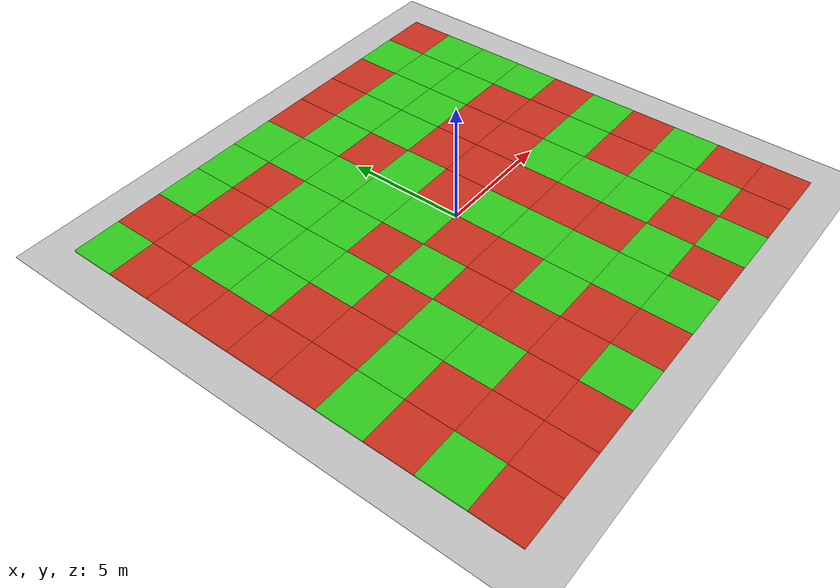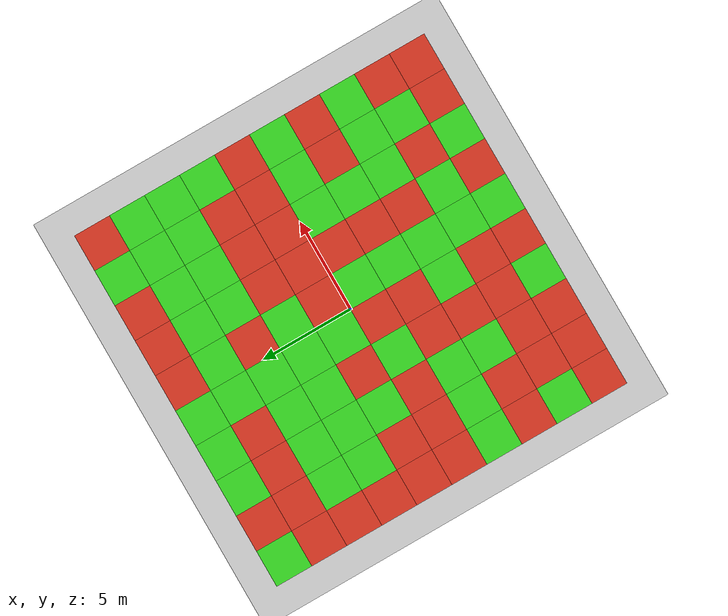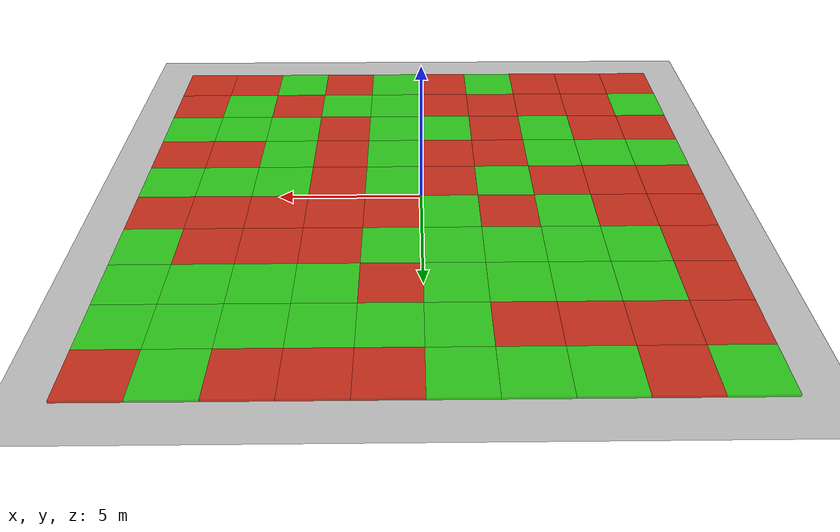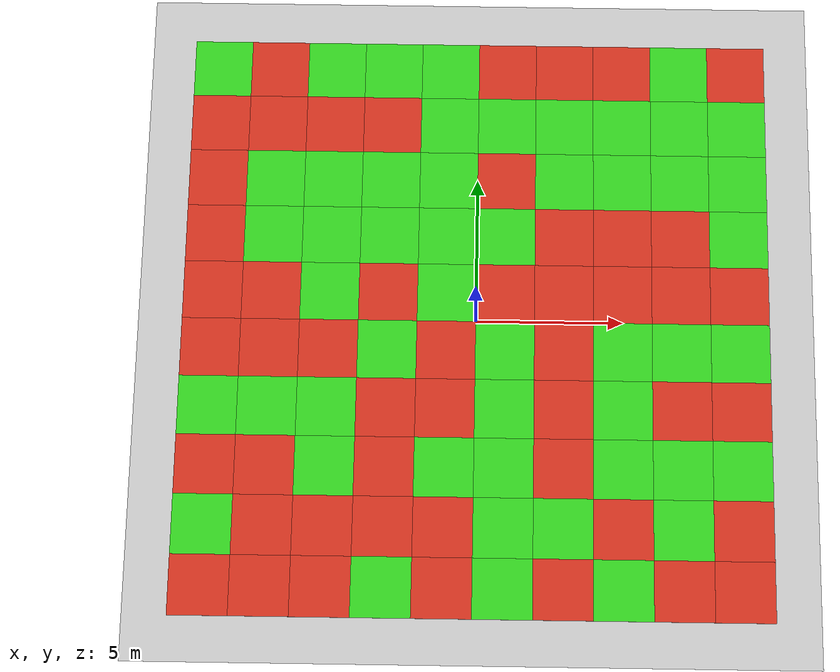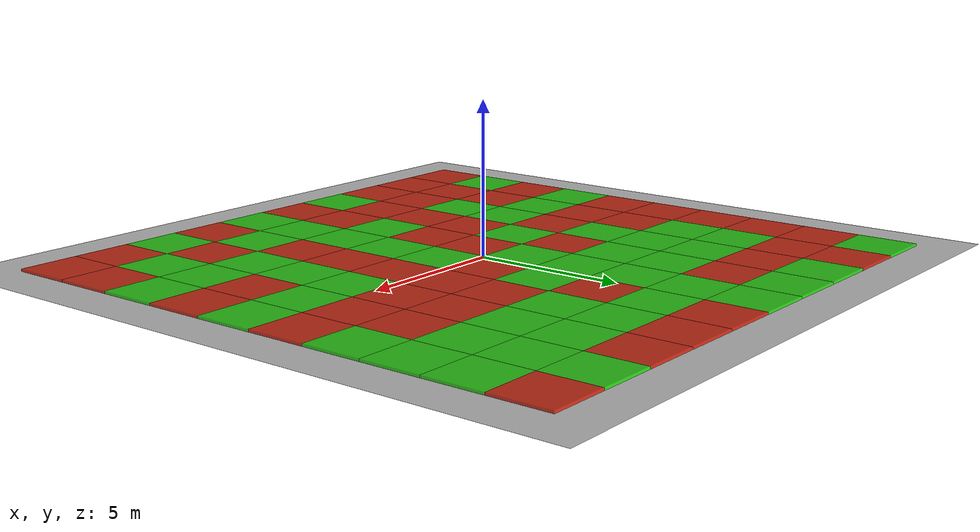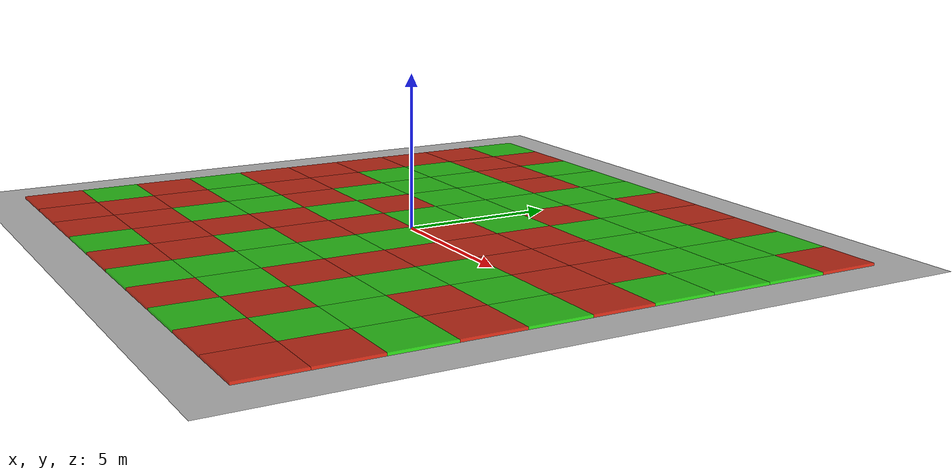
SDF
<?xml version="1.0" ?>
<sdf version='1.9'>
  <world name='car_world'>
    <physics name='1ms' type='ignored'>
      <max_step_size>0.001</max_step_size>
      <real_time_factor>1</real_time_factor>
      <real_time_update_rate>1000</real_time_update_rate>
    </physics>
    <plugin name='ignition::gazebo::systems::Physics' filename='libignition-gazebo-physics-system.so'/>
    <plugin name='ignition::gazebo::systems::UserCommands' filename='libignition-gazebo-user-commands-system.so'/>
    <plugin name='ignition::gazebo::systems::SceneBroadcaster' filename='libignition-gazebo-scene-broadcaster-system.so'/>
    <gravity>0 0 -9.8</gravity>
    <magnetic_field>6e-06 2.3e-05 -4.2e-05</magnetic_field>
    <atmosphere type='adiabatic'/>
    <scene>
      <ambient>0.4 0.4 0.4 1</ambient>
      <background>0.7 0.7 0.7 1</background>
      <shadows>true</shadows>
    </scene>
    <model name='ground_plane'>
      <static>true</static>
      <link name='link'>
        <collision name='collision'>
          <geometry>
            <plane>
              <normal>0 0 1</normal>
              <size>1 1</size>
            </plane>
          </geometry>
          <surface>
            <friction>
              <ode/>
            </friction>
            <bounce/>
            <contact/>
          </surface>
        </collision>
        <visual name='visual'>
          <geometry>
            <plane>
              <normal>0 0 1</normal>
              <size>100 100</size>
            </plane>
          </geometry>
          <material>
            <ambient>0.8 0.8 0.8 1</ambient>
            <diffuse>0.8 0.8 0.8 1</diffuse>
            <specular>0.8 0.8 0.8 1</specular>
          </material>
        </visual>
        <pose>0 0 0 0 -0 0</pose>
        <inertial>
          <pose>0 0 0 0 -0 0</pose>
          <mass>1</mass>
          <inertia>
            <ixx>1</ixx>
            <ixy>0</ixy>
            <ixz>0</ixz>
            <iyy>1</iyy>
            <iyz>0</iyz>
            <izz>1</izz>
          </inertia>
        </inertial>
        <enable_wind>false</enable_wind>
      </link>
      <pose>0 0 0 0 -0 0</pose>
      <self_collide>false</self_collide>
    </model>
    <model name='planks'>
      <pose>0 0 0 0 -0 0</pose>
      <include>
			  <uri>model://tiles/tile_00.sdf</uri>
		  </include>
      <include>
			  <uri>model://tiles/tile_01.sdf</uri>
		  </include>
      <include>
			  <uri>model://tiles/tile_02.sdf</uri>
		  </include>
      <include>
			  <uri>model://tiles/tile_03.sdf</uri>
		  </include>
      <include>
			  <uri>model://tiles/tile_04.sdf</uri>
		  </include>
      <include>
			  <uri>model://tiles/tile_05.sdf</uri>
		  </include>
      <include>
			  <uri>model://tiles/tile_06.sdf</uri>
		  </include>
      <include>
			  <uri>model://tiles/tile_07.sdf</uri>
		  </include>
      <include>
			  <uri>model://tiles/tile_08.sdf</uri>
		  </include>
      <include>
			  <uri>model://tiles/tile_09.sdf</uri>
		  </include>
      <include>
			  <uri>model://tiles/tile_10.sdf</uri>
		  </include>
      <include>
			  <uri>model://tiles/tile_11.sdf</uri>
		  </include>
      <include>
			  <uri>model://tiles/tile_12.sdf</uri>
		  </include>
      <include>
			  <uri>model://tiles/tile_13.sdf</uri>
		  </include>
      <include>
			  <uri>model://tiles/tile_14.sdf</uri>
		  </include>
      <include>
			  <uri>model://tiles/tile_15.sdf</uri>
		  </include>
      <include>
			  <uri>model://tiles/tile_16.sdf</uri>
		  </include>
      <include>
			  <uri>model://tiles/tile_17.sdf</uri>
		  </include>
      <include>
			  <uri>model://tiles/tile_18.sdf</uri>
		  </include>
      <include>
			  <uri>model://tiles/tile_19.sdf</uri>
      </include>
      <include>
			  <uri>model://tiles/tile_20.sdf</uri>
		  </include>
      <include>
			  <uri>model://tiles/tile_21.sdf</uri>
		  </include>
      <include>
			  <uri>model://tiles/tile_22.sdf</uri>
		  </include>
      <include>
			  <uri>model://tiles/tile_23.sdf</uri>
		  </include>
      <include>
			  <uri>model://tiles/tile_24.sdf</uri>
		  </include>
      <include>
			  <uri>model://tiles/tile_25.sdf</uri>
		  </include>
      <include>
			  <uri>model://tiles/tile_26.sdf</uri>
		  </include>
      <include>
			  <uri>model://tiles/tile_27.sdf</uri>
		  </include>
      <include>
			  <uri>model://tiles/tile_28.sdf</uri>
		  </include>
      <include>
			  <uri>model://tiles/tile_29.sdf</uri>
		  </include>
      <include>
			  <uri>model://tiles/tile_30.sdf</uri>
		  </include>
      <include>
			  <uri>model://tiles/tile_31.sdf</uri>
		  </include>
      <include>
			  <uri>model://tiles/tile_32.sdf</uri>
		  </include>
      <include>
			  <uri>model://tiles/tile_33.sdf</uri>
		  </include>
      <include>
			  <uri>model://tiles/tile_34.sdf</uri>
		  </include>
      <include>
			  <uri>model://tiles/tile_35.sdf</uri>
		  </include>
      <include>
			  <uri>model://tiles/tile_36.sdf</uri>
		  </include>
      <include>
			  <uri>model://tiles/tile_37.sdf</uri>
		  </include>
      <include>
			  <uri>model://tiles/tile_38.sdf</uri>
		  </include>
      <include>
			  <uri>model://tiles/tile_39.sdf</uri>
		  </include>
      <include>
			  <uri>model://tiles/tile_40.sdf</uri>
		  </include>
      <include>
			  <uri>model://tiles/tile_41.sdf</uri>
		  </include>
      <include>
			  <uri>model://tiles/tile_42.sdf</uri>
		  </include>
      <include>
			  <uri>model://tiles/tile_43.sdf</uri>
		  </include>
      <include>
			  <uri>model://tiles/tile_44.sdf</uri>
		  </include>
      <include>
			  <uri>model://tiles/tile_45.sdf</uri>
		  </include>
      <include>
			  <uri>model://tiles/tile_46.sdf</uri>
		  </include>
      <include>
			  <uri>model://tiles/tile_47.sdf</uri>
		  </include>
      <include>
			  <uri>model://tiles/tile_48.sdf</uri>
		  </include>
      <include>
			  <uri>model://tiles/tile_49.sdf</uri>
		  </include>
      <include>
			  <uri>model://tiles/tile_50.sdf</uri>
		  </include>
      <include>
			  <uri>model://tiles/tile_51.sdf</uri>
		  </include>
      <include>
			  <uri>model://tiles/tile_52.sdf</uri>
		  </include>
      <include>
			  <uri>model://tiles/tile_53.sdf</uri>
		  </include>
      <include>
			  <uri>model://tiles/tile_54.sdf</uri>
		  </include>
      <include>
			  <uri>model://tiles/tile_55.sdf</uri>
		  </include>
      <include>
			  <uri>model://tiles/tile_56.sdf</uri>
		  </include>
      <include>
			  <uri>model://tiles/tile_57.sdf</uri>
		  </include>
      <include>
			  <uri>model://tiles/tile_58.sdf</uri>
		  </include>
      <include>
			  <uri>model://tiles/tile_59.sdf</uri>
		  </include>
      <include>
			  <uri>model://tiles/tile_60.sdf</uri>
		  </include>
      <include>
			  <uri>model://tiles/tile_61.sdf</uri>
		  </include>
      <include>
			  <uri>model://tiles/tile_62.sdf</uri>
		  </include>
      <include>
			  <uri>model://tiles/tile_63.sdf</uri>
		  </include>
      <include>
			  <uri>model://tiles/tile_64.sdf</uri>
		  </include>
      <include>
			  <uri>model://tiles/tile_65.sdf</uri>
		  </include>
      <include>
			  <uri>model://tiles/tile_66.sdf</uri>
		  </include>
      <include>
			  <uri>model://tiles/tile_67.sdf</uri>
		  </include>
      <include>
			  <uri>model://tiles/tile_68.sdf</uri>
		  </include>
      <include>
			  <uri>model://tiles/tile_69.sdf</uri>
		  </include>
      <include>
			  <uri>model://tiles/tile_70.sdf</uri>
		  </include>
      <include>
			  <uri>model://tiles/tile_71.sdf</uri>
		  </include>
      <include>
			  <uri>model://tiles/tile_72.sdf</uri>
		  </include>
      <include>
			  <uri>model://tiles/tile_73.sdf</uri>
		  </include>
      <include>
			  <uri>model://tiles/tile_74.sdf</uri>
		  </include>
      <include>
			  <uri>model://tiles/tile_75.sdf</uri>
		  </include>
      <include>
			  <uri>model://tiles/tile_76.sdf</uri>
		  </include>
      <include>
			  <uri>model://tiles/tile_77.sdf</uri>
		  </include>
      <include>
			  <uri>model://tiles/tile_78.sdf</uri>
		  </include>
      <include>
			  <uri>model://tiles/tile_79.sdf</uri>
		  </include>
      <include>
			  <uri>model://tiles/tile_80.sdf</uri>
		  </include>
      <include>
			  <uri>model://tiles/tile_81.sdf</uri>
		  </include>
      <include>
			  <uri>model://tiles/tile_82.sdf</uri>
		  </include>
      <include>
			  <uri>model://tiles/tile_83.sdf</uri>
		  </include>
      <include>
			  <uri>model://tiles/tile_84.sdf</uri>
		  </include>
      <include>
			  <uri>model://tiles/tile_85.sdf</uri>
		  </include>
      <include>
			  <uri>model://tiles/tile_86.sdf</uri>
		  </include>
      <include>
			  <uri>model://tiles/tile_87.sdf</uri>
		  </include>
      <include>
			  <uri>model://tiles/tile_88.sdf</uri>
		  </include>
      <include>
			  <uri>model://tiles/tile_89.sdf</uri>
		  </include>
      <include>
			  <uri>model://tiles/tile_90.sdf</uri>
		  </include>
      <include>
			  <uri>model://tiles/tile_91.sdf</uri>
		  </include>
      <include>
			  <uri>model://tiles/tile_92.sdf</uri>
		  </include>
      <include>
			  <uri>model://tiles/tile_93.sdf</uri>
		  </include>
      <include>
			  <uri>model://tiles/tile_94.sdf</uri>
		  </include>
      <include>
			  <uri>model://tiles/tile_95.sdf</uri>
		  </include>
      <include>
			  <uri>model://tiles/tile_96.sdf</uri>
		  </include>
      <include>
			  <uri>model://tiles/tile_97.sdf</uri>
		  </include>
      <include>
			  <uri>model://tiles/tile_98.sdf</uri>
		  </include>
      <include>
			  <uri>model://tiles/tile_99.sdf</uri>
		  </include>
      <static>false</static>
      <self_collide>false</self_collide>
      <static>false</static>
      <self_collide>false</self_collide>

    </model>
    <light name='sun' type='directional'>
      <pose>0 0 10 0 -0 0</pose>
      <cast_shadows>true</cast_shadows>
      <intensity>1</intensity>
      <direction>-0.5 0.1 -0.9</direction>
      <diffuse>0.8 0.8 0.8 1</diffuse>
      <specular>0.2 0.2 0.2 1</specular>
      <attenuation>
        <range>1000</range>
        <linear>0.01</linear>
        <constant>0.90000000000000002</constant>
        <quadratic>0.001</quadratic>
      </attenuation>
      <spot>
        <inner_angle>0</inner_angle>
        <outer_angle>0</outer_angle>
        <falloff>0</falloff>
      </spot>
    </light>
  </world>
</sdf>

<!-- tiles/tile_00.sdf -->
<sdf version="1.6">
  <model name="tile_-5_-5">
    <pose>-9 -9 0 0 0 0</pose>
      <link name="tile_-5_-5">
        <pose>0 0 0 0 -0 0</pose>
        <inertial>
          <mass>260.134</mass>
          <inertia>
            <ixx>86.8209</ixx>
            <ixy>0</ixy>
            <ixz>0</ixz>
            <iyy>86.8213</iyy>
            <iyz>0</iyz>
            <izz>173.423</izz>
          </inertia>
          <pose>0 0 0 0 -0 0</pose>
        </inertial>
        <visual name='visual'>
          <geometry>
            <box>
              <size>2 2 0.1</size>
            </box>
          </geometry>
          <material>
            <ambient>0.9 0.1 0 0.8</ambient>
            <diffuse>0.9 0.1 0 0.8</diffuse>
            <specular>0.9 0.1 0 0.8</specular>
          </material>
        </visual>
        <collision name='collision'>
          <geometry>
            <box>
              <size>2 2 0.1</size>
            </box>
          </geometry>
          <surface>
            <friction>
              <ode>
                <mu>44.0</mu>
                <mu2>4.0</mu2>
              </ode>
            </friction>
            <bounce/>
            <contact/>
          </surface>
        </collision>
        <enable_wind>false</enable_wind>
      </link>
  </model>
</sdf>

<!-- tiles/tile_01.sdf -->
<sdf version="1.6">
  <model name="tile_-5_-4">
    <pose>-9 -7 0 0 0 0</pose>
      <link name="tile_-5_-4">
        <pose>0 0 0 0 -0 0</pose>
        <inertial>
          <mass>260.134</mass>
          <inertia>
            <ixx>86.8209</ixx>
            <ixy>0</ixy>
            <ixz>0</ixz>
            <iyy>86.8213</iyy>
            <iyz>0</iyz>
            <izz>173.423</izz>
          </inertia>
          <pose>0 0 0 0 -0 0</pose>
        </inertial>
        <visual name='visual'>
          <geometry>
            <box>
              <size>2 2 0.1</size>
            </box>
          </geometry>
          <material>
            <ambient>0.1 0.9 0 0.8</ambient>
            <diffuse>0.1 0.9 0 0.8</diffuse>
            <specular>0.1 0.9 0 0.8</specular>
          </material>
        </visual>
        <collision name='collision'>
          <geometry>
            <box>
              <size>2 2 0.1</size>
            </box>
          </geometry>
          <surface>
            <friction>
              <ode>
                <mu>86.0</mu>
                <mu2>5.0</mu2>
              </ode>
            </friction>
            <bounce/>
            <contact/>
          </surface>
        </collision>
        <enable_wind>false</enable_wind>
      </link>
  </model>
</sdf>

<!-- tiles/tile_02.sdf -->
<sdf version="1.6">
  <model name="tile_-5_-3">
    <pose>-9 -5 0 0 0 0</pose>
      <link name="tile_-5_-3">
        <pose>0 0 0 0 -0 0</pose>
        <inertial>
          <mass>260.134</mass>
          <inertia>
            <ixx>86.8209</ixx>
            <ixy>0</ixy>
            <ixz>0</ixz>
            <iyy>86.8213</iyy>
            <iyz>0</iyz>
            <izz>173.423</izz>
          </inertia>
          <pose>0 0 0 0 -0 0</pose>
        </inertial>
        <visual name='visual'>
          <geometry>
            <box>
              <size>2 2 0.1</size>
            </box>
          </geometry>
          <material>
            <ambient>0.9 0.1 0 0.8</ambient>
            <diffuse>0.9 0.1 0 0.8</diffuse>
            <specular>0.9 0.1 0 0.8</specular>
          </material>
        </visual>
        <collision name='collision'>
          <geometry>
            <box>
              <size>2 2 0.1</size>
            </box>
          </geometry>
          <surface>
            <friction>
              <ode>
                <mu>8.0</mu>
                <mu2>35.0</mu2>
              </ode>
            </friction>
            <bounce/>
            <contact/>
          </surface>
        </collision>
        <enable_wind>false</enable_wind>
      </link>
  </model>
</sdf>

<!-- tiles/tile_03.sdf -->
<sdf version="1.6">
  <model name="tile_-5_-2">
    <pose>-9 -3 0 0 0 0</pose>
      <link name="tile_-5_-2">
        <pose>0 0 0 0 -0 0</pose>
        <inertial>
          <mass>260.134</mass>
          <inertia>
            <ixx>86.8209</ixx>
            <ixy>0</ixy>
            <ixz>0</ixz>
            <iyy>86.8213</iyy>
            <iyz>0</iyz>
            <izz>173.423</izz>
          </inertia>
          <pose>0 0 0 0 -0 0</pose>
        </inertial>
        <visual name='visual'>
          <geometry>
            <box>
              <size>2 2 0.1</size>
            </box>
          </geometry>
          <material>
            <ambient>0.1 0.9 0 0.8</ambient>
            <diffuse>0.1 0.9 0 0.8</diffuse>
            <specular>0.1 0.9 0 0.8</specular>
          </material>
        </visual>
        <collision name='collision'>
          <geometry>
            <box>
              <size>2 2 0.1</size>
            </box>
          </geometry>
          <surface>
            <friction>
              <ode>
                <mu>55.00000000000001</mu>
                <mu2>54.0</mu2>
              </ode>
            </friction>
            <bounce/>
            <contact/>
          </surface>
        </collision>
        <enable_wind>false</enable_wind>
      </link>
  </model>
</sdf>

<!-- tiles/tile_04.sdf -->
<sdf version="1.6">
  <model name="tile_-5_-1">
    <pose>-9 -1 0 0 0 0</pose>
      <link name="tile_-5_-1">
        <pose>0 0 0 0 -0 0</pose>
        <inertial>
          <mass>260.134</mass>
          <inertia>
            <ixx>86.8209</ixx>
            <ixy>0</ixy>
            <ixz>0</ixz>
            <iyy>86.8213</iyy>
            <iyz>0</iyz>
            <izz>173.423</izz>
          </inertia>
          <pose>0 0 0 0 -0 0</pose>
        </inertial>
        <visual name='visual'>
          <geometry>
            <box>
              <size>2 2 0.1</size>
            </box>
          </geometry>
          <material>
            <ambient>0.9 0.1 0 0.8</ambient>
            <diffuse>0.9 0.1 0 0.8</diffuse>
            <specular>0.9 0.1 0 0.8</specular>
          </material>
        </visual>
        <collision name='collision'>
          <geometry>
            <box>
              <size>2 2 0.1</size>
            </box>
          </geometry>
          <surface>
            <friction>
              <ode>
                <mu>46.0</mu>
                <mu2>69.0</mu2>
              </ode>
            </friction>
            <bounce/>
            <contact/>
          </surface>
        </collision>
        <enable_wind>false</enable_wind>
      </link>
  </model>
</sdf>

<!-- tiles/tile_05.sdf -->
<sdf version="1.6">
  <model name="tile_-5_0">
    <pose>-9 1 0 0 0 0</pose>
      <link name="tile_-5_0">
        <pose>0 0 0 0 -0 0</pose>
        <inertial>
          <mass>260.134</mass>
          <inertia>
            <ixx>86.8209</ixx>
            <ixy>0</ixy>
            <ixz>0</ixz>
            <iyy>86.8213</iyy>
            <iyz>0</iyz>
            <izz>173.423</izz>
          </inertia>
          <pose>0 0 0 0 -0 0</pose>
        </inertial>
        <visual name='visual'>
          <geometry>
            <box>
              <size>2 2 0.1</size>
            </box>
          </geometry>
          <material>
            <ambient>0.9 0.1 0 0.8</ambient>
            <diffuse>0.9 0.1 0 0.8</diffuse>
            <specular>0.9 0.1 0 0.8</specular>
          </material>
        </visual>
        <collision name='collision'>
          <geometry>
            <box>
              <size>2 2 0.1</size>
            </box>
          </geometry>
          <surface>
            <friction>
              <ode>
                <mu>40.0</mu>
                <mu2>16.0</mu2>
              </ode>
            </friction>
            <bounce/>
            <contact/>
          </surface>
        </collision>
        <enable_wind>false</enable_wind>
      </link>
  </model>
</sdf>

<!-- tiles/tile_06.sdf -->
<sdf version="1.6">
  <model name="tile_-5_1">
    <pose>-9 3 0 0 0 0</pose>
      <link name="tile_-5_1">
        <pose>0 0 0 0 -0 0</pose>
        <inertial>
          <mass>260.134</mass>
          <inertia>
            <ixx>86.8209</ixx>
            <ixy>0</ixy>
            <ixz>0</ixz>
            <iyy>86.8213</iyy>
            <iyz>0</iyz>
            <izz>173.423</izz>
          </inertia>
          <pose>0 0 0 0 -0 0</pose>
        </inertial>
        <visual name='visual'>
          <geometry>
            <box>
              <size>2 2 0.1</size>
            </box>
          </geometry>
          <material>
            <ambient>0.9 0.1 0 0.8</ambient>
            <diffuse>0.9 0.1 0 0.8</diffuse>
            <specular>0.9 0.1 0 0.8</specular>
          </material>
        </visual>
        <collision name='collision'>
          <geometry>
            <box>
              <size>2 2 0.1</size>
            </box>
          </geometry>
          <surface>
            <friction>
              <ode>
                <mu>13.0</mu>
                <mu2>96.0</mu2>
              </ode>
            </friction>
            <bounce/>
            <contact/>
          </surface>
        </collision>
        <enable_wind>false</enable_wind>
      </link>
  </model>
</sdf>

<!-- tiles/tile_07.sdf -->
<sdf version="1.6">
  <model name="tile_-5_2">
    <pose>-9 5 0 0 0 0</pose>
      <link name="tile_-5_2">
        <pose>0 0 0 0 -0 0</pose>
        <inertial>
          <mass>260.134</mass>
          <inertia>
            <ixx>86.8209</ixx>
            <ixy>0</ixy>
            <ixz>0</ixz>
            <iyy>86.8213</iyy>
            <iyz>0</iyz>
            <izz>173.423</izz>
          </inertia>
          <pose>0 0 0 0 -0 0</pose>
        </inertial>
        <visual name='visual'>
          <geometry>
            <box>
              <size>2 2 0.1</size>
            </box>
          </geometry>
          <material>
            <ambient>0.9 0.1 0 0.8</ambient>
            <diffuse>0.9 0.1 0 0.8</diffuse>
            <specular>0.9 0.1 0 0.8</specular>
          </material>
        </visual>
        <collision name='collision'>
          <geometry>
            <box>
              <size>2 2 0.1</size>
            </box>
          </geometry>
          <surface>
            <friction>
              <ode>
                <mu>16.0</mu>
                <mu2>18.0</mu2>
              </ode>
            </friction>
            <bounce/>
            <contact/>
          </surface>
        </collision>
        <enable_wind>false</enable_wind>
      </link>
  </model>
</sdf>

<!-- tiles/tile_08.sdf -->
<sdf version="1.6">
  <model name="tile_-5_3">
    <pose>-9 7 0 0 0 0</pose>
      <link name="tile_-5_3">
        <pose>0 0 0 0 -0 0</pose>
        <inertial>
          <mass>260.134</mass>
          <inertia>
            <ixx>86.8209</ixx>
            <ixy>0</ixy>
            <ixz>0</ixz>
            <iyy>86.8213</iyy>
            <iyz>0</iyz>
            <izz>173.423</izz>
          </inertia>
          <pose>0 0 0 0 -0 0</pose>
        </inertial>
        <visual name='visual'>
          <geometry>
            <box>
              <size>2 2 0.1</size>
            </box>
          </geometry>
          <material>
            <ambient>0.9 0.1 0 0.8</ambient>
            <diffuse>0.9 0.1 0 0.8</diffuse>
            <specular>0.9 0.1 0 0.8</specular>
          </material>
        </visual>
        <collision name='collision'>
          <geometry>
            <box>
              <size>2 2 0.1</size>
            </box>
          </geometry>
          <surface>
            <friction>
              <ode>
                <mu>11.0</mu>
                <mu2>15.0</mu2>
              </ode>
            </friction>
            <bounce/>
            <contact/>
          </surface>
        </collision>
        <enable_wind>false</enable_wind>
      </link>
  </model>
</sdf>

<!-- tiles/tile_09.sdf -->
<sdf version="1.6">
  <model name="tile_-5_4">
    <pose>-9 9 0 0 0 0</pose>
      <link name="tile_-5_4">
        <pose>0 0 0 0 -0 0</pose>
        <inertial>
          <mass>260.134</mass>
          <inertia>
            <ixx>86.8209</ixx>
            <ixy>0</ixy>
            <ixz>0</ixz>
            <iyy>86.8213</iyy>
            <iyz>0</iyz>
            <izz>173.423</izz>
          </inertia>
          <pose>0 0 0 0 -0 0</pose>
        </inertial>
        <visual name='visual'>
          <geometry>
            <box>
              <size>2 2 0.1</size>
            </box>
          </geometry>
          <material>
            <ambient>0.1 0.9 0 0.8</ambient>
            <diffuse>0.1 0.9 0 0.8</diffuse>
            <specular>0.1 0.9 0 0.8</specular>
          </material>
        </visual>
        <collision name='collision'>
          <geometry>
            <box>
              <size>2 2 0.1</size>
            </box>
          </geometry>
          <surface>
            <friction>
              <ode>
                <mu>89.0</mu>
                <mu2>5.0</mu2>
              </ode>
            </friction>
            <bounce/>
            <contact/>
          </surface>
        </collision>
        <enable_wind>false</enable_wind>
      </link>
  </model>
</sdf>

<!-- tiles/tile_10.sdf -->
<sdf version="1.6">
  <model name="tile_-4_-5">
    <pose>-7 -9 0 0 0 0</pose>
      <link name="tile_-4_-5">
        <pose>0 0 0 0 -0 0</pose>
        <inertial>
          <mass>260.134</mass>
          <inertia>
            <ixx>86.8209</ixx>
            <ixy>0</ixy>
            <ixz>0</ixz>
            <iyy>86.8213</iyy>
            <iyz>0</iyz>
            <izz>173.423</izz>
          </inertia>
          <pose>0 0 0 0 -0 0</pose>
        </inertial>
        <visual name='visual'>
          <geometry>
            <box>
              <size>2 2 0.1</size>
            </box>
          </geometry>
          <material>
            <ambient>0.9 0.1 0 0.8</ambient>
            <diffuse>0.9 0.1 0 0.8</diffuse>
            <specular>0.9 0.1 0 0.8</specular>
          </material>
        </visual>
        <collision name='collision'>
          <geometry>
            <box>
              <size>2 2 0.1</size>
            </box>
          </geometry>
          <surface>
            <friction>
              <ode>
                <mu>14.000000000000002</mu>
                <mu2>87.0</mu2>
              </ode>
            </friction>
            <bounce/>
            <contact/>
          </surface>
        </collision>
        <enable_wind>false</enable_wind>
      </link>
  </model>
</sdf>

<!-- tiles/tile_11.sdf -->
<sdf version="1.6">
  <model name="tile_-4_-4">
    <pose>-7 -7 0 0 0 0</pose>
      <link name="tile_-4_-4">
        <pose>0 0 0 0 -0 0</pose>
        <inertial>
          <mass>260.134</mass>
          <inertia>
            <ixx>86.8209</ixx>
            <ixy>0</ixy>
            <ixz>0</ixz>
            <iyy>86.8213</iyy>
            <iyz>0</iyz>
            <izz>173.423</izz>
          </inertia>
          <pose>0 0 0 0 -0 0</pose>
        </inertial>
        <visual name='visual'>
          <geometry>
            <box>
              <size>2 2 0.1</size>
            </box>
          </geometry>
          <material>
            <ambient>0.9 0.1 0 0.8</ambient>
            <diffuse>0.9 0.1 0 0.8</diffuse>
            <specular>0.9 0.1 0 0.8</specular>
          </material>
        </visual>
        <collision name='collision'>
          <geometry>
            <box>
              <size>2 2 0.1</size>
            </box>
          </geometry>
          <surface>
            <friction>
              <ode>
                <mu>26.0</mu>
                <mu2>62.0</mu2>
              </ode>
            </friction>
            <bounce/>
            <contact/>
          </surface>
        </collision>
        <enable_wind>false</enable_wind>
      </link>
  </model>
</sdf>

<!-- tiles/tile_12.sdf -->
<sdf version="1.6">
  <model name="tile_-4_-3">
    <pose>-7 -5 0 0 0 0</pose>
      <link name="tile_-4_-3">
        <pose>0 0 0 0 -0 0</pose>
        <inertial>
          <mass>260.134</mass>
          <inertia>
            <ixx>86.8209</ixx>
            <ixy>0</ixy>
            <ixz>0</ixz>
            <iyy>86.8213</iyy>
            <iyz>0</iyz>
            <izz>173.423</izz>
          </inertia>
          <pose>0 0 0 0 -0 0</pose>
        </inertial>
        <visual name='visual'>
          <geometry>
            <box>
              <size>2 2 0.1</size>
            </box>
          </geometry>
          <material>
            <ambient>0.9 0.1 0 0.8</ambient>
            <diffuse>0.9 0.1 0 0.8</diffuse>
            <specular>0.9 0.1 0 0.8</specular>
          </material>
        </visual>
        <collision name='collision'>
          <geometry>
            <box>
              <size>2 2 0.1</size>
            </box>
          </geometry>
          <surface>
            <friction>
              <ode>
                <mu>45.0</mu>
                <mu2>14.000000000000002</mu2>
              </ode>
            </friction>
            <bounce/>
            <contact/>
          </surface>
        </collision>
        <enable_wind>false</enable_wind>
      </link>
  </model>
</sdf>

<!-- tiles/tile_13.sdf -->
<sdf version="1.6">
  <model name="tile_-4_-2">
    <pose>-7 -3 0 0 0 0</pose>
      <link name="tile_-4_-2">
        <pose>0 0 0 0 -0 0</pose>
        <inertial>
          <mass>260.134</mass>
          <inertia>
            <ixx>86.8209</ixx>
            <ixy>0</ixy>
            <ixz>0</ixz>
            <iyy>86.8213</iyy>
            <iyz>0</iyz>
            <izz>173.423</izz>
          </inertia>
          <pose>0 0 0 0 -0 0</pose>
        </inertial>
        <visual name='visual'>
          <geometry>
            <box>
              <size>2 2 0.1</size>
            </box>
          </geometry>
          <material>
            <ambient>0.1 0.9 0 0.8</ambient>
            <diffuse>0.1 0.9 0 0.8</diffuse>
            <specular>0.1 0.9 0 0.8</specular>
          </material>
        </visual>
        <collision name='collision'>
          <geometry>
            <box>
              <size>2 2 0.1</size>
            </box>
          </geometry>
          <surface>
            <friction>
              <ode>
                <mu>96.0</mu>
                <mu2>23.0</mu2>
              </ode>
            </friction>
            <bounce/>
            <contact/>
          </surface>
        </collision>
        <enable_wind>false</enable_wind>
      </link>
  </model>
</sdf>

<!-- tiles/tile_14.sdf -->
<sdf version="1.6">
  <model name="tile_-4_-1">
    <pose>-7 -1 0 0 0 0</pose>
      <link name="tile_-4_-1">
        <pose>0 0 0 0 -0 0</pose>
        <inertial>
          <mass>260.134</mass>
          <inertia>
            <ixx>86.8209</ixx>
            <ixy>0</ixy>
            <ixz>0</ixz>
            <iyy>86.8213</iyy>
            <iyz>0</iyz>
            <izz>173.423</izz>
          </inertia>
          <pose>0 0 0 0 -0 0</pose>
        </inertial>
        <visual name='visual'>
          <geometry>
            <box>
              <size>2 2 0.1</size>
            </box>
          </geometry>
          <material>
            <ambient>0.9 0.1 0 0.8</ambient>
            <diffuse>0.9 0.1 0 0.8</diffuse>
            <specular>0.9 0.1 0 0.8</specular>
          </material>
        </visual>
        <collision name='collision'>
          <geometry>
            <box>
              <size>2 2 0.1</size>
            </box>
          </geometry>
          <surface>
            <friction>
              <ode>
                <mu>25.0</mu>
                <mu2>98.0</mu2>
              </ode>
            </friction>
            <bounce/>
            <contact/>
          </surface>
        </collision>
        <enable_wind>false</enable_wind>
      </link>
  </model>
</sdf>

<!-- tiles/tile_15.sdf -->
<sdf version="1.6">
  <model name="tile_-4_0">
    <pose>-7 1 0 0 0 0</pose>
      <link name="tile_-4_0">
        <pose>0 0 0 0 -0 0</pose>
        <inertial>
          <mass>260.134</mass>
          <inertia>
            <ixx>86.8209</ixx>
            <ixy>0</ixy>
            <ixz>0</ixz>
            <iyy>86.8213</iyy>
            <iyz>0</iyz>
            <izz>173.423</izz>
          </inertia>
          <pose>0 0 0 0 -0 0</pose>
        </inertial>
        <visual name='visual'>
          <geometry>
            <box>
              <size>2 2 0.1</size>
            </box>
          </geometry>
          <material>
            <ambient>0.9 0.1 0 0.8</ambient>
            <diffuse>0.9 0.1 0 0.8</diffuse>
            <specular>0.9 0.1 0 0.8</specular>
          </material>
        </visual>
        <collision name='collision'>
          <geometry>
            <box>
              <size>2 2 0.1</size>
            </box>
          </geometry>
          <surface>
            <friction>
              <ode>
                <mu>24.0</mu>
                <mu2>20.0</mu2>
              </ode>
            </friction>
            <bounce/>
            <contact/>
          </surface>
        </collision>
        <enable_wind>false</enable_wind>
      </link>
  </model>
</sdf>

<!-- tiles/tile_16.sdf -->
<sdf version="1.6">
  <model name="tile_-4_1">
    <pose>-7 3 0 0 0 0</pose>
      <link name="tile_-4_1">
        <pose>0 0 0 0 -0 0</pose>
        <inertial>
          <mass>260.134</mass>
          <inertia>
            <ixx>86.8209</ixx>
            <ixy>0</ixy>
            <ixz>0</ixz>
            <iyy>86.8213</iyy>
            <iyz>0</iyz>
            <izz>173.423</izz>
          </inertia>
          <pose>0 0 0 0 -0 0</pose>
        </inertial>
        <visual name='visual'>
          <geometry>
            <box>
              <size>2 2 0.1</size>
            </box>
          </geometry>
          <material>
            <ambient>0.1 0.9 0 0.8</ambient>
            <diffuse>0.1 0.9 0 0.8</diffuse>
            <specular>0.1 0.9 0 0.8</specular>
          </material>
        </visual>
        <collision name='collision'>
          <geometry>
            <box>
              <size>2 2 0.1</size>
            </box>
          </geometry>
          <surface>
            <friction>
              <ode>
                <mu>56.99999999999999</mu>
                <mu2>7.000000000000001</mu2>
              </ode>
            </friction>
            <bounce/>
            <contact/>
          </surface>
        </collision>
        <enable_wind>false</enable_wind>
      </link>
  </model>
</sdf>

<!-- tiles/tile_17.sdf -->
<sdf version="1.6">
  <model name="tile_-4_2">
    <pose>-7 5 0 0 0 0</pose>
      <link name="tile_-4_2">
        <pose>0 0 0 0 -0 0</pose>
        <inertial>
          <mass>260.134</mass>
          <inertia>
            <ixx>86.8209</ixx>
            <ixy>0</ixy>
            <ixz>0</ixz>
            <iyy>86.8213</iyy>
            <iyz>0</iyz>
            <izz>173.423</izz>
          </inertia>
          <pose>0 0 0 0 -0 0</pose>
        </inertial>
        <visual name='visual'>
          <geometry>
            <box>
              <size>2 2 0.1</size>
            </box>
          </geometry>
          <material>
            <ambient>0.1 0.9 0 0.8</ambient>
            <diffuse>0.1 0.9 0 0.8</diffuse>
            <specular>0.1 0.9 0 0.8</specular>
          </material>
        </visual>
        <collision name='collision'>
          <geometry>
            <box>
              <size>2 2 0.1</size>
            </box>
          </geometry>
          <surface>
            <friction>
              <ode>
                <mu>51.0</mu>
                <mu2>97.0</mu2>
              </ode>
            </friction>
            <bounce/>
            <contact/>
          </surface>
        </collision>
        <enable_wind>false</enable_wind>
      </link>
  </model>
</sdf>

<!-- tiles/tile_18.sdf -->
<sdf version="1.6">
  <model name="tile_-4_3">
    <pose>-7 7 0 0 0 0</pose>
      <link name="tile_-4_3">
        <pose>0 0 0 0 -0 0</pose>
        <inertial>
          <mass>260.134</mass>
          <inertia>
            <ixx>86.8209</ixx>
            <ixy>0</ixy>
            <ixz>0</ixz>
            <iyy>86.8213</iyy>
            <iyz>0</iyz>
            <izz>173.423</izz>
          </inertia>
          <pose>0 0 0 0 -0 0</pose>
        </inertial>
        <visual name='visual'>
          <geometry>
            <box>
              <size>2 2 0.1</size>
            </box>
          </geometry>
          <material>
            <ambient>0.9 0.1 0 0.8</ambient>
            <diffuse>0.9 0.1 0 0.8</diffuse>
            <specular>0.9 0.1 0 0.8</specular>
          </material>
        </visual>
        <collision name='collision'>
          <geometry>
            <box>
              <size>2 2 0.1</size>
            </box>
          </geometry>
          <surface>
            <friction>
              <ode>
                <mu>41.0</mu>
                <mu2>26.0</mu2>
              </ode>
            </friction>
            <bounce/>
            <contact/>
          </surface>
        </collision>
        <enable_wind>false</enable_wind>
      </link>
  </model>
</sdf>

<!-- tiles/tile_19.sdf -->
<sdf version="1.6">
  <model name="tile_-4_4">
    <pose>-7 9 0 0 0 0</pose>
      <link name="tile_-4_4">
        <pose>0 0 0 0 -0 0</pose>
        <inertial>
          <mass>260.134</mass>
          <inertia>
            <ixx>86.8209</ixx>
            <ixy>0</ixy>
            <ixz>0</ixz>
            <iyy>86.8213</iyy>
            <iyz>0</iyz>
            <izz>173.423</izz>
          </inertia>
          <pose>0 0 0 0 -0 0</pose>
        </inertial>
        <visual name='visual'>
          <geometry>
            <box>
              <size>2 2 0.1</size>
            </box>
          </geometry>
          <material>
            <ambient>0.9 0.1 0 0.8</ambient>
            <diffuse>0.9 0.1 0 0.8</diffuse>
            <specular>0.9 0.1 0 0.8</specular>
          </material>
        </visual>
        <collision name='collision'>
          <geometry>
            <box>
              <size>2 2 0.1</size>
            </box>
          </geometry>
          <surface>
            <friction>
              <ode>
                <mu>47.0</mu>
                <mu2>85.0</mu2>
              </ode>
            </friction>
            <bounce/>
            <contact/>
          </surface>
        </collision>
        <enable_wind>false</enable_wind>
      </link>
  </model>
</sdf>

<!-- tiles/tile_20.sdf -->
<sdf version="1.6">
  <model name="tile_-3_-5">
    <pose>-5 -9 0 0 0 0</pose>
      <link name="tile_-3_-5">
        <pose>0 0 0 0 -0 0</pose>
        <inertial>
          <mass>260.134</mass>
          <inertia>
            <ixx>86.8209</ixx>
            <ixy>0</ixy>
            <ixz>0</ixz>
            <iyy>86.8213</iyy>
            <iyz>0</iyz>
            <izz>173.423</izz>
          </inertia>
          <pose>0 0 0 0 -0 0</pose>
        </inertial>
        <visual name='visual'>
          <geometry>
            <box>
              <size>2 2 0.1</size>
            </box>
          </geometry>
          <material>
            <ambient>0.9 0.1 0 0.8</ambient>
            <diffuse>0.9 0.1 0 0.8</diffuse>
            <specular>0.9 0.1 0 0.8</specular>
          </material>
        </visual>
        <collision name='collision'>
          <geometry>
            <box>
              <size>2 2 0.1</size>
            </box>
          </geometry>
          <surface>
            <friction>
              <ode>
                <mu>28.999999999999996</mu>
                <mu2>78.0</mu2>
              </ode>
            </friction>
            <bounce/>
            <contact/>
          </surface>
        </collision>
        <enable_wind>false</enable_wind>
      </link>
  </model>
</sdf>

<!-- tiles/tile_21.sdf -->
<sdf version="1.6">
  <model name="tile_-3_-4">
    <pose>-5 -7 0 0 0 0</pose>
      <link name="tile_-3_-4">
        <pose>0 0 0 0 -0 0</pose>
        <inertial>
          <mass>260.134</mass>
          <inertia>
            <ixx>86.8209</ixx>
            <ixy>0</ixy>
            <ixz>0</ixz>
            <iyy>86.8213</iyy>
            <iyz>0</iyz>
            <izz>173.423</izz>
          </inertia>
          <pose>0 0 0 0 -0 0</pose>
        </inertial>
        <visual name='visual'>
          <geometry>
            <box>
              <size>2 2 0.1</size>
            </box>
          </geometry>
          <material>
            <ambient>0.9 0.1 0 0.8</ambient>
            <diffuse>0.9 0.1 0 0.8</diffuse>
            <specular>0.9 0.1 0 0.8</specular>
          </material>
        </visual>
        <collision name='collision'>
          <geometry>
            <box>
              <size>2 2 0.1</size>
            </box>
          </geometry>
          <surface>
            <friction>
              <ode>
                <mu>42.0</mu>
                <mu2>49.0</mu2>
              </ode>
            </friction>
            <bounce/>
            <contact/>
          </surface>
        </collision>
        <enable_wind>false</enable_wind>
      </link>
  </model>
</sdf>

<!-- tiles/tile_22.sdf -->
<sdf version="1.6">
  <model name="tile_-3_-3">
    <pose>-5 -5 0 0 0 0</pose>
      <link name="tile_-3_-3">
        <pose>0 0 0 0 -0 0</pose>
        <inertial>
          <mass>260.134</mass>
          <inertia>
            <ixx>86.8209</ixx>
            <ixy>0</ixy>
            <ixz>0</ixz>
            <iyy>86.8213</iyy>
            <iyz>0</iyz>
            <izz>173.423</izz>
          </inertia>
          <pose>0 0 0 0 -0 0</pose>
        </inertial>
        <visual name='visual'>
          <geometry>
            <box>
              <size>2 2 0.1</size>
            </box>
          </geometry>
          <material>
            <ambient>0.1 0.9 0 0.8</ambient>
            <diffuse>0.1 0.9 0 0.8</diffuse>
            <specular>0.1 0.9 0 0.8</specular>
          </material>
        </visual>
        <collision name='collision'>
          <geometry>
            <box>
              <size>2 2 0.1</size>
            </box>
          </geometry>
          <surface>
            <friction>
              <ode>
                <mu>67.0</mu>
                <mu2>44.0</mu2>
              </ode>
            </friction>
            <bounce/>
            <contact/>
          </surface>
        </collision>
        <enable_wind>false</enable_wind>
      </link>
  </model>
</sdf>

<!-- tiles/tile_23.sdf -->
<sdf version="1.6">
  <model name="tile_-3_-2">
    <pose>-5 -3 0 0 0 0</pose>
      <link name="tile_-3_-2">
        <pose>0 0 0 0 -0 0</pose>
        <inertial>
          <mass>260.134</mass>
          <inertia>
            <ixx>86.8209</ixx>
            <ixy>0</ixy>
            <ixz>0</ixz>
            <iyy>86.8213</iyy>
            <iyz>0</iyz>
            <izz>173.423</izz>
          </inertia>
          <pose>0 0 0 0 -0 0</pose>
        </inertial>
        <visual name='visual'>
          <geometry>
            <box>
              <size>2 2 0.1</size>
            </box>
          </geometry>
          <material>
            <ambient>0.1 0.9 0 0.8</ambient>
            <diffuse>0.1 0.9 0 0.8</diffuse>
            <specular>0.1 0.9 0 0.8</specular>
          </material>
        </visual>
        <collision name='collision'>
          <geometry>
            <box>
              <size>2 2 0.1</size>
            </box>
          </geometry>
          <surface>
            <friction>
              <ode>
                <mu>94.0</mu>
                <mu2>20.0</mu2>
              </ode>
            </friction>
            <bounce/>
            <contact/>
          </surface>
        </collision>
        <enable_wind>false</enable_wind>
      </link>
  </model>
</sdf>

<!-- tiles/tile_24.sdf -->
<sdf version="1.6">
  <model name="tile_-3_-1">
    <pose>-5 -1 0 0 0 0</pose>
      <link name="tile_-3_-1">
        <pose>0 0 0 0 -0 0</pose>
        <inertial>
          <mass>260.134</mass>
          <inertia>
            <ixx>86.8209</ixx>
            <ixy>0</ixy>
            <ixz>0</ixz>
            <iyy>86.8213</iyy>
            <iyz>0</iyz>
            <izz>173.423</izz>
          </inertia>
          <pose>0 0 0 0 -0 0</pose>
        </inertial>
        <visual name='visual'>
          <geometry>
            <box>
              <size>2 2 0.1</size>
            </box>
          </geometry>
          <material>
            <ambient>0.9 0.1 0 0.8</ambient>
            <diffuse>0.9 0.1 0 0.8</diffuse>
            <specular>0.9 0.1 0 0.8</specular>
          </material>
        </visual>
        <collision name='collision'>
          <geometry>
            <box>
              <size>2 2 0.1</size>
            </box>
          </geometry>
          <surface>
            <friction>
              <ode>
                <mu>41.0</mu>
                <mu2>13.0</mu2>
              </ode>
            </friction>
            <bounce/>
            <contact/>
          </surface>
        </collision>
        <enable_wind>false</enable_wind>
      </link>
  </model>
</sdf>

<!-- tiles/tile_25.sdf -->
<sdf version="1.6">
  <model name="tile_-3_0">
    <pose>-5 1 0 0 0 0</pose>
      <link name="tile_-3_0">
        <pose>0 0 0 0 -0 0</pose>
        <inertial>
          <mass>260.134</mass>
          <inertia>
            <ixx>86.8209</ixx>
            <ixy>0</ixy>
            <ixz>0</ixz>
            <iyy>86.8213</iyy>
            <iyz>0</iyz>
            <izz>173.423</izz>
          </inertia>
          <pose>0 0 0 0 -0 0</pose>
        </inertial>
        <visual name='visual'>
          <geometry>
            <box>
              <size>2 2 0.1</size>
            </box>
          </geometry>
          <material>
            <ambient>0.1 0.9 0 0.8</ambient>
            <diffuse>0.1 0.9 0 0.8</diffuse>
            <specular>0.1 0.9 0 0.8</specular>
          </material>
        </visual>
        <collision name='collision'>
          <geometry>
            <box>
              <size>2 2 0.1</size>
            </box>
          </geometry>
          <surface>
            <friction>
              <ode>
                <mu>66.0</mu>
                <mu2>39.0</mu2>
              </ode>
            </friction>
            <bounce/>
            <contact/>
          </surface>
        </collision>
        <enable_wind>false</enable_wind>
      </link>
  </model>
</sdf>

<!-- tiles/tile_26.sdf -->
<sdf version="1.6">
  <model name="tile_-3_1">
    <pose>-5 3 0 0 0 0</pose>
      <link name="tile_-3_1">
        <pose>0 0 0 0 -0 0</pose>
        <inertial>
          <mass>260.134</mass>
          <inertia>
            <ixx>86.8209</ixx>
            <ixy>0</ixy>
            <ixz>0</ixz>
            <iyy>86.8213</iyy>
            <iyz>0</iyz>
            <izz>173.423</izz>
          </inertia>
          <pose>0 0 0 0 -0 0</pose>
        </inertial>
        <visual name='visual'>
          <geometry>
            <box>
              <size>2 2 0.1</size>
            </box>
          </geometry>
          <material>
            <ambient>0.1 0.9 0 0.8</ambient>
            <diffuse>0.1 0.9 0 0.8</diffuse>
            <specular>0.1 0.9 0 0.8</specular>
          </material>
        </visual>
        <collision name='collision'>
          <geometry>
            <box>
              <size>2 2 0.1</size>
            </box>
          </geometry>
          <surface>
            <friction>
              <ode>
                <mu>69.0</mu>
                <mu2>56.99999999999999</mu2>
              </ode>
            </friction>
            <bounce/>
            <contact/>
          </surface>
        </collision>
        <enable_wind>false</enable_wind>
      </link>
  </model>
</sdf>

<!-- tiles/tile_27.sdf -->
<sdf version="1.6">
  <model name="tile_-3_2">
    <pose>-5 5 0 0 0 0</pose>
      <link name="tile_-3_2">
        <pose>0 0 0 0 -0 0</pose>
        <inertial>
          <mass>260.134</mass>
          <inertia>
            <ixx>86.8209</ixx>
            <ixy>0</ixy>
            <ixz>0</ixz>
            <iyy>86.8213</iyy>
            <iyz>0</iyz>
            <izz>173.423</izz>
          </inertia>
          <pose>0 0 0 0 -0 0</pose>
        </inertial>
        <visual name='visual'>
          <geometry>
            <box>
              <size>2 2 0.1</size>
            </box>
          </geometry>
          <material>
            <ambient>0.1 0.9 0 0.8</ambient>
            <diffuse>0.1 0.9 0 0.8</diffuse>
            <specular>0.1 0.9 0 0.8</specular>
          </material>
        </visual>
        <collision name='collision'>
          <geometry>
            <box>
              <size>2 2 0.1</size>
            </box>
          </geometry>
          <surface>
            <friction>
              <ode>
                <mu>93.0</mu>
                <mu2>95.0</mu2>
              </ode>
            </friction>
            <bounce/>
            <contact/>
          </surface>
        </collision>
        <enable_wind>false</enable_wind>
      </link>
  </model>
</sdf>

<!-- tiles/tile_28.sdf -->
<sdf version="1.6">
  <model name="tile_-3_3">
    <pose>-5 7 0 0 0 0</pose>
      <link name="tile_-3_3">
        <pose>0 0 0 0 -0 0</pose>
        <inertial>
          <mass>260.134</mass>
          <inertia>
            <ixx>86.8209</ixx>
            <ixy>0</ixy>
            <ixz>0</ixz>
            <iyy>86.8213</iyy>
            <iyz>0</iyz>
            <izz>173.423</izz>
          </inertia>
          <pose>0 0 0 0 -0 0</pose>
        </inertial>
        <visual name='visual'>
          <geometry>
            <box>
              <size>2 2 0.1</size>
            </box>
          </geometry>
          <material>
            <ambient>0.9 0.1 0 0.8</ambient>
            <diffuse>0.9 0.1 0 0.8</diffuse>
            <specular>0.9 0.1 0 0.8</specular>
          </material>
        </visual>
        <collision name='collision'>
          <geometry>
            <box>
              <size>2 2 0.1</size>
            </box>
          </geometry>
          <surface>
            <friction>
              <ode>
                <mu>17.0</mu>
                <mu2>14.000000000000002</mu2>
              </ode>
            </friction>
            <bounce/>
            <contact/>
          </surface>
        </collision>
        <enable_wind>false</enable_wind>
      </link>
  </model>
</sdf>

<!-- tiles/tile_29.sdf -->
<sdf version="1.6">
  <model name="tile_-3_4">
    <pose>-5 9 0 0 0 0</pose>
      <link name="tile_-3_4">
        <pose>0 0 0 0 -0 0</pose>
        <inertial>
          <mass>260.134</mass>
          <inertia>
            <ixx>86.8209</ixx>
            <ixy>0</ixy>
            <ixz>0</ixz>
            <iyy>86.8213</iyy>
            <iyz>0</iyz>
            <izz>173.423</izz>
          </inertia>
          <pose>0 0 0 0 -0 0</pose>
        </inertial>
        <visual name='visual'>
          <geometry>
            <box>
              <size>2 2 0.1</size>
            </box>
          </geometry>
          <material>
            <ambient>0.1 0.9 0 0.8</ambient>
            <diffuse>0.1 0.9 0 0.8</diffuse>
            <specular>0.1 0.9 0 0.8</specular>
          </material>
        </visual>
        <collision name='collision'>
          <geometry>
            <box>
              <size>2 2 0.1</size>
            </box>
          </geometry>
          <surface>
            <friction>
              <ode>
                <mu>79.0</mu>
                <mu2>77.0</mu2>
              </ode>
            </friction>
            <bounce/>
            <contact/>
          </surface>
        </collision>
        <enable_wind>false</enable_wind>
      </link>
  </model>
</sdf>

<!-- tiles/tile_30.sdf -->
<sdf version="1.6">
  <model name="tile_-2_-5">
    <pose>-3 -9 0 0 0 0</pose>
      <link name="tile_-2_-5">
        <pose>0 0 0 0 -0 0</pose>
        <inertial>
          <mass>260.134</mass>
          <inertia>
            <ixx>86.8209</ixx>
            <ixy>0</ixy>
            <ixz>0</ixz>
            <iyy>86.8213</iyy>
            <iyz>0</iyz>
            <izz>173.423</izz>
          </inertia>
          <pose>0 0 0 0 -0 0</pose>
        </inertial>
        <visual name='visual'>
          <geometry>
            <box>
              <size>2 2 0.1</size>
            </box>
          </geometry>
          <material>
            <ambient>0.1 0.9 0 0.8</ambient>
            <diffuse>0.1 0.9 0 0.8</diffuse>
            <specular>0.1 0.9 0 0.8</specular>
          </material>
        </visual>
        <collision name='collision'>
          <geometry>
            <box>
              <size>2 2 0.1</size>
            </box>
          </geometry>
          <surface>
            <friction>
              <ode>
                <mu>86.0</mu>
                <mu2>13.0</mu2>
              </ode>
            </friction>
            <bounce/>
            <contact/>
          </surface>
        </collision>
        <enable_wind>false</enable_wind>
      </link>
  </model>
</sdf>

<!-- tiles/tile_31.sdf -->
<sdf version="1.6">
  <model name="tile_-2_-4">
    <pose>-3 -7 0 0 0 0</pose>
      <link name="tile_-2_-4">
        <pose>0 0 0 0 -0 0</pose>
        <inertial>
          <mass>260.134</mass>
          <inertia>
            <ixx>86.8209</ixx>
            <ixy>0</ixy>
            <ixz>0</ixz>
            <iyy>86.8213</iyy>
            <iyz>0</iyz>
            <izz>173.423</izz>
          </inertia>
          <pose>0 0 0 0 -0 0</pose>
        </inertial>
        <visual name='visual'>
          <geometry>
            <box>
              <size>2 2 0.1</size>
            </box>
          </geometry>
          <material>
            <ambient>0.9 0.1 0 0.8</ambient>
            <diffuse>0.9 0.1 0 0.8</diffuse>
            <specular>0.9 0.1 0 0.8</specular>
          </material>
        </visual>
        <collision name='collision'>
          <geometry>
            <box>
              <size>2 2 0.1</size>
            </box>
          </geometry>
          <surface>
            <friction>
              <ode>
                <mu>15.0</mu>
                <mu2>53.0</mu2>
              </ode>
            </friction>
            <bounce/>
            <contact/>
          </surface>
        </collision>
        <enable_wind>false</enable_wind>
      </link>
  </model>
</sdf>

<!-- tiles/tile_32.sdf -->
<sdf version="1.6">
  <model name="tile_-2_-3">
    <pose>-3 -5 0 0 0 0</pose>
      <link name="tile_-2_-3">
        <pose>0 0 0 0 -0 0</pose>
        <inertial>
          <mass>260.134</mass>
          <inertia>
            <ixx>86.8209</ixx>
            <ixy>0</ixy>
            <ixz>0</ixz>
            <iyy>86.8213</iyy>
            <iyz>0</iyz>
            <izz>173.423</izz>
          </inertia>
          <pose>0 0 0 0 -0 0</pose>
        </inertial>
        <visual name='visual'>
          <geometry>
            <box>
              <size>2 2 0.1</size>
            </box>
          </geometry>
          <material>
            <ambient>0.9 0.1 0 0.8</ambient>
            <diffuse>0.9 0.1 0 0.8</diffuse>
            <specular>0.9 0.1 0 0.8</specular>
          </material>
        </visual>
        <collision name='collision'>
          <geometry>
            <box>
              <size>2 2 0.1</size>
            </box>
          </geometry>
          <surface>
            <friction>
              <ode>
                <mu>31.0</mu>
                <mu2>89.0</mu2>
              </ode>
            </friction>
            <bounce/>
            <contact/>
          </surface>
        </collision>
        <enable_wind>false</enable_wind>
      </link>
  </model>
</sdf>

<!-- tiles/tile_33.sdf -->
<sdf version="1.6">
  <model name="tile_-2_-2">
    <pose>-3 -3 0 0 0 0</pose>
      <link name="tile_-2_-2">
        <pose>0 0 0 0 -0 0</pose>
        <inertial>
          <mass>260.134</mass>
          <inertia>
            <ixx>86.8209</ixx>
            <ixy>0</ixy>
            <ixz>0</ixz>
            <iyy>86.8213</iyy>
            <iyz>0</iyz>
            <izz>173.423</izz>
          </inertia>
          <pose>0 0 0 0 -0 0</pose>
        </inertial>
        <visual name='visual'>
          <geometry>
            <box>
              <size>2 2 0.1</size>
            </box>
          </geometry>
          <material>
            <ambient>0.9 0.1 0 0.8</ambient>
            <diffuse>0.9 0.1 0 0.8</diffuse>
            <specular>0.9 0.1 0 0.8</specular>
          </material>
        </visual>
        <collision name='collision'>
          <geometry>
            <box>
              <size>2 2 0.1</size>
            </box>
          </geometry>
          <surface>
            <friction>
              <ode>
                <mu>7.000000000000001</mu>
                <mu2>24.0</mu2>
              </ode>
            </friction>
            <bounce/>
            <contact/>
          </surface>
        </collision>
        <enable_wind>false</enable_wind>
      </link>
  </model>
</sdf>

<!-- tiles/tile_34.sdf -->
<sdf version="1.6">
  <model name="tile_-2_-1">
    <pose>-3 -1 0 0 0 0</pose>
      <link name="tile_-2_-1">
        <pose>0 0 0 0 -0 0</pose>
        <inertial>
          <mass>260.134</mass>
          <inertia>
            <ixx>86.8209</ixx>
            <ixy>0</ixy>
            <ixz>0</ixz>
            <iyy>86.8213</iyy>
            <iyz>0</iyz>
            <izz>173.423</izz>
          </inertia>
          <pose>0 0 0 0 -0 0</pose>
        </inertial>
        <visual name='visual'>
          <geometry>
            <box>
              <size>2 2 0.1</size>
            </box>
          </geometry>
          <material>
            <ambient>0.1 0.9 0 0.8</ambient>
            <diffuse>0.1 0.9 0 0.8</diffuse>
            <specular>0.1 0.9 0 0.8</specular>
          </material>
        </visual>
        <collision name='collision'>
          <geometry>
            <box>
              <size>2 2 0.1</size>
            </box>
          </geometry>
          <surface>
            <friction>
              <ode>
                <mu>61.0</mu>
                <mu2>20.0</mu2>
              </ode>
            </friction>
            <bounce/>
            <contact/>
          </surface>
        </collision>
        <enable_wind>false</enable_wind>
      </link>
  </model>
</sdf>

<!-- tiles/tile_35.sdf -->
<sdf version="1.6">
  <model name="tile_-2_0">
    <pose>-3 1 0 0 0 0</pose>
      <link name="tile_-2_0">
        <pose>0 0 0 0 -0 0</pose>
        <inertial>
          <mass>260.134</mass>
          <inertia>
            <ixx>86.8209</ixx>
            <ixy>0</ixy>
            <ixz>0</ixz>
            <iyy>86.8213</iyy>
            <iyz>0</iyz>
            <izz>173.423</izz>
          </inertia>
          <pose>0 0 0 0 -0 0</pose>
        </inertial>
        <visual name='visual'>
          <geometry>
            <box>
              <size>2 2 0.1</size>
            </box>
          </geometry>
          <material>
            <ambient>0.9 0.1 0 0.8</ambient>
            <diffuse>0.9 0.1 0 0.8</diffuse>
            <specular>0.9 0.1 0 0.8</specular>
          </material>
        </visual>
        <collision name='collision'>
          <geometry>
            <box>
              <size>2 2 0.1</size>
            </box>
          </geometry>
          <surface>
            <friction>
              <ode>
                <mu>8.0</mu>
                <mu2>75.0</mu2>
              </ode>
            </friction>
            <bounce/>
            <contact/>
          </surface>
        </collision>
        <enable_wind>false</enable_wind>
      </link>
  </model>
</sdf>

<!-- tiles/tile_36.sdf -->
<sdf version="1.6">
  <model name="tile_-2_1">
    <pose>-3 3 0 0 0 0</pose>
      <link name="tile_-2_1">
        <pose>0 0 0 0 -0 0</pose>
        <inertial>
          <mass>260.134</mass>
          <inertia>
            <ixx>86.8209</ixx>
            <ixy>0</ixy>
            <ixz>0</ixz>
            <iyy>86.8213</iyy>
            <iyz>0</iyz>
            <izz>173.423</izz>
          </inertia>
          <pose>0 0 0 0 -0 0</pose>
        </inertial>
        <visual name='visual'>
          <geometry>
            <box>
              <size>2 2 0.1</size>
            </box>
          </geometry>
          <material>
            <ambient>0.1 0.9 0 0.8</ambient>
            <diffuse>0.1 0.9 0 0.8</diffuse>
            <specular>0.1 0.9 0 0.8</specular>
          </material>
        </visual>
        <collision name='collision'>
          <geometry>
            <box>
              <size>2 2 0.1</size>
            </box>
          </geometry>
          <surface>
            <friction>
              <ode>
                <mu>65.0</mu>
                <mu2>48.0</mu2>
              </ode>
            </friction>
            <bounce/>
            <contact/>
          </surface>
        </collision>
        <enable_wind>false</enable_wind>
      </link>
  </model>
</sdf>

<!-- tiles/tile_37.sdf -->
<sdf version="1.6">
  <model name="tile_-2_2">
    <pose>-3 5 0 0 0 0</pose>
      <link name="tile_-2_2">
        <pose>0 0 0 0 -0 0</pose>
        <inertial>
          <mass>260.134</mass>
          <inertia>
            <ixx>86.8209</ixx>
            <ixy>0</ixy>
            <ixz>0</ixz>
            <iyy>86.8213</iyy>
            <iyz>0</iyz>
            <izz>173.423</izz>
          </inertia>
          <pose>0 0 0 0 -0 0</pose>
        </inertial>
        <visual name='visual'>
          <geometry>
            <box>
              <size>2 2 0.1</size>
            </box>
          </geometry>
          <material>
            <ambient>0.1 0.9 0 0.8</ambient>
            <diffuse>0.1 0.9 0 0.8</diffuse>
            <specular>0.1 0.9 0 0.8</specular>
          </material>
        </visual>
        <collision name='collision'>
          <geometry>
            <box>
              <size>2 2 0.1</size>
            </box>
          </geometry>
          <surface>
            <friction>
              <ode>
                <mu>62.0</mu>
                <mu2>88.0</mu2>
              </ode>
            </friction>
            <bounce/>
            <contact/>
          </surface>
        </collision>
        <enable_wind>false</enable_wind>
      </link>
  </model>
</sdf>

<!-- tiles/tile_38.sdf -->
<sdf version="1.6">
  <model name="tile_-2_3">
    <pose>-3 7 0 0 0 0</pose>
      <link name="tile_-2_3">
        <pose>0 0 0 0 -0 0</pose>
        <inertial>
          <mass>260.134</mass>
          <inertia>
            <ixx>86.8209</ixx>
            <ixy>0</ixy>
            <ixz>0</ixz>
            <iyy>86.8213</iyy>
            <iyz>0</iyz>
            <izz>173.423</izz>
          </inertia>
          <pose>0 0 0 0 -0 0</pose>
        </inertial>
        <visual name='visual'>
          <geometry>
            <box>
              <size>2 2 0.1</size>
            </box>
          </geometry>
          <material>
            <ambient>0.9 0.1 0 0.8</ambient>
            <diffuse>0.9 0.1 0 0.8</diffuse>
            <specular>0.9 0.1 0 0.8</specular>
          </material>
        </visual>
        <collision name='collision'>
          <geometry>
            <box>
              <size>2 2 0.1</size>
            </box>
          </geometry>
          <surface>
            <friction>
              <ode>
                <mu>24.0</mu>
                <mu2>59.0</mu2>
              </ode>
            </friction>
            <bounce/>
            <contact/>
          </surface>
        </collision>
        <enable_wind>false</enable_wind>
      </link>
  </model>
</sdf>
